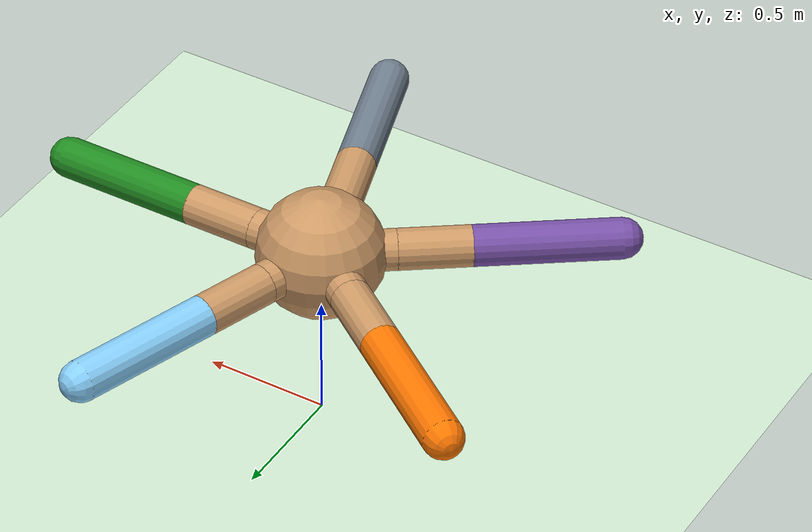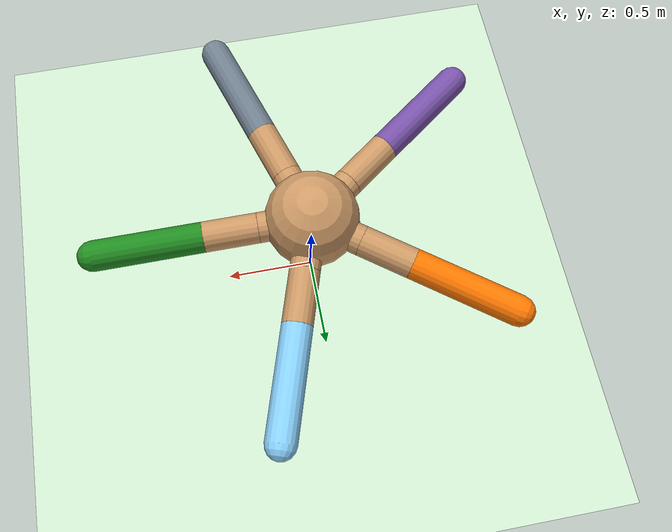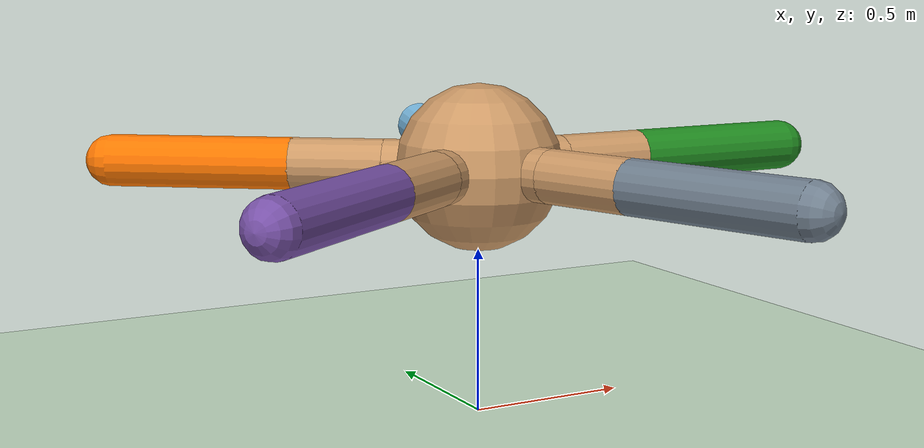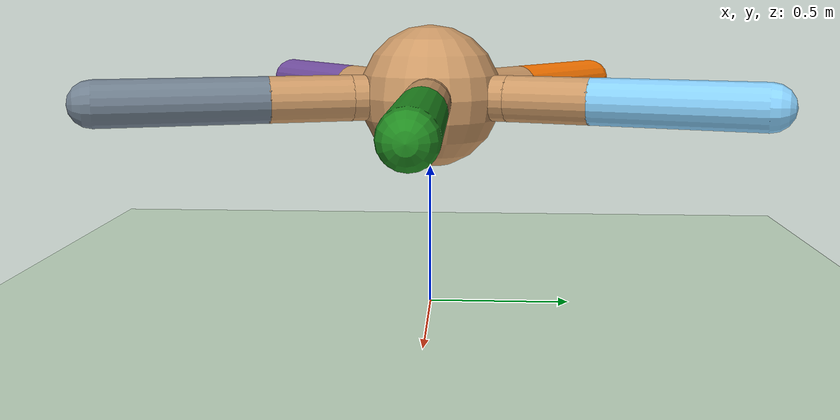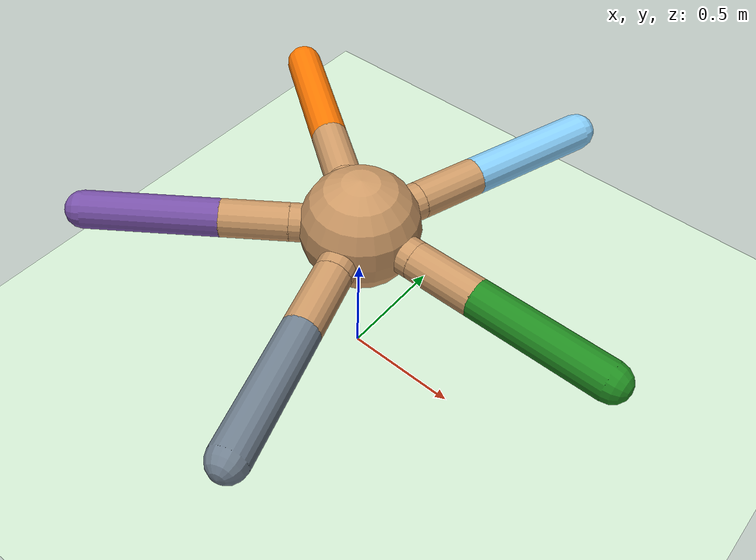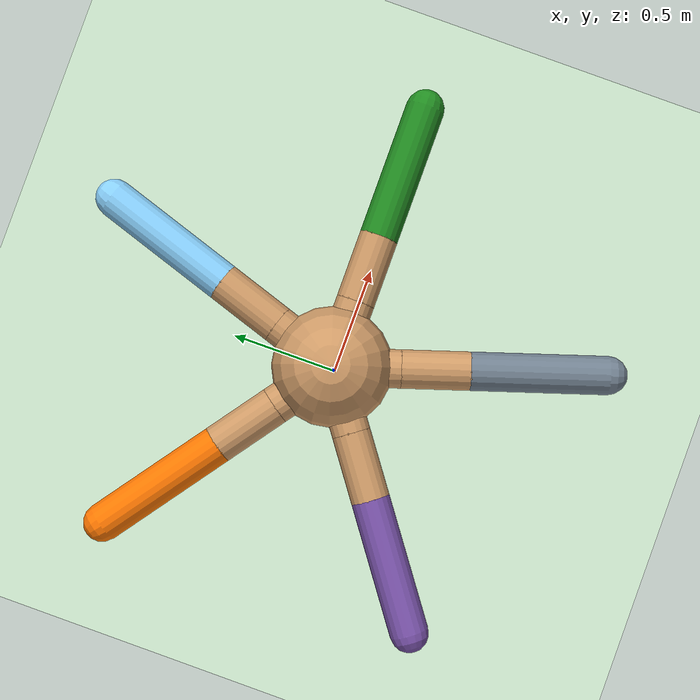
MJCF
<mujoco model="ant_5leg">
  <compiler angle="degree" coordinate="local" inertiafromgeom="true"/>
  <option integrator="RK4" timestep="0.01"/>
  <custom>
    <numeric data="0.0 0.0 0.55 1.0 0.0 0.0 0.0 0.0 1.0 0.0 -1.0 0.0 1.0 0.0 -1.0 0.0 1.0" name="init_qpos"/>
  </custom>
  <default>
    <joint armature="1" damping="1" limited=  "true"/>
    <geom conaffinity="0" condim="3" density="5.0" friction="1 0.5 0.5" margin="0.01" rgba="0.8 0.6 0.4 1"/>
  </default>
  <asset>
    <texture builtin="gradient" height="100" rgb1="1 1 1" rgb2="0 0 0" type="skybox" width="100"/>
    <texture builtin="flat" height="1278" mark="cross" markrgb="1 1 1" name="texgeom" random="0.01" rgb1="0.8 0.6 0.4" rgb2="0.8 0.6 0.4" type="cube" width="127"/>
    <texture builtin="checker" height="100" name="texplane" rgb1="0 0 0" rgb2="0.8 0.8 0.8" type="2d" width="100"/>
    <material name="MatPlane" reflectance="0.5" shininess="1" specular="1" texrepeat="60 60" texture="texplane"/>
    <material name="geom" texture="texgeom" texuniform="true"/>
  </asset>
  <worldbody>
    <light cutoff="100" diffuse="1 1 1" dir="-0 0 -1.3" directional="true" exponent="1" pos="0 0 1.3" specular=".1 .1 .1"/>
    <geom conaffinity="1" condim="3" material="MatPlane" name="floor" pos="0 0 0" rgba="0.8 0.9 0.8 1" size="40 40 40" type="plane"/>
    <body name="torso" pos="0 0 0.75">
      <camera name="track" mode="trackcom" pos="0 -3 0.3" xyaxes="1 0 0 0 0 1"/>
      <geom name="torso_geom" pos="0 0 0" size="0.25" type="sphere"/>
      <joint armature="0" damping="0" limited="false" margin="0.01" name="root" pos="0 0 0" type="free"/>
      <!-- leg_0 :   0 deg -->
      <body name="leg_0" pos="0 0 0">
        <geom fromto="0.0 0.0 0.0 0.2828427125 0 0" name="aux_0_geom" size="0.08" type="capsule"/>
        <body name="aux_0" pos="0.2828427125 0 0" >
          <joint name="hip_0" type="hinge" axis="0 0 1" pos="0 0 0" range="-30 30"/>
          <geom fromto="0 0 0   0.2828427125 0 0" name="leg0_geom" size="0.08" type="capsule" />
          <body pos="0.2828427125 0 0">
            <joint name="ankle_0" type="hinge" axis="0 1 0" pos="0 0 0" range="30 70"/>
            <!-- Forest Green -->
            <geom fromto="0 0 0   0.565685425 0 0" name="leg0_ankle_geom" size="0.08" type="capsule"  rgba="0.13 0.55 0.13 1" />
          </body>
        </body>
      </body>

      <!-- leg_1 :  72 deg -->
      <body name="leg_1" pos="0 0 0">
        <geom fromto="0 0 0   0.0874032049 0.2689994048 0" name="aux_1_geom" size="0.08" type="capsule"/>
        <body name="aux_1" pos="0.0874032049 0.2689994048 0">
          <joint name="hip_1" type="hinge" axis="0 0 1" pos="0 0 0" range="-30 30"/>
          <geom fromto="0 0 0   0.0874032049 0.2689994048 0" name="leg1_geom" size="0.08" type="capsule"/>
          <body pos="0.0874032049 0.2689994048 0">
            <joint name="ankle_1" type="hinge" axis="-0.95105651629 0.30901699437 0" pos="0 0 0" range="30 70"/>
            <!-- Sky Blue -->
            <geom fromto="0 0 0   0.1748064098 0.5379988096 0" name="leg1_ankle_geom" size="0.08" type="capsule" rgba="0.53 0.81 0.98 1" />
          </body>
        </body>
      </body>

      <!-- leg_2 : 144 deg -->
      <body name="leg_2" pos="0 0 0">
        <geom fromto="0 0 0   -0.2288245611 0.1662507751 0" name="aux_2_geom" size="0.08" type="capsule"/>
        <body name="aux_2" pos="-0.2288245611 0.1662507751 0">
          <joint name="hip_2" type="hinge" axis="0 0 1" pos="0 0 0" range="-30 30"/>
          <geom fromto="0 0 0   -0.2288245611 0.1662507751 0" name="leg2_geom" size="0.08" type="capsule"/>
          <body pos="-0.2288245611 0.1662507751 0">
            <joint name="ankle_2" type="hinge" axis="0.58778525229 0.80901699437 0" pos="0 0 0" range="-70 -30"/>
            <!-- Sunset Orange -->
            <geom fromto="0 0 0   -0.4576491223 0.3325015503 0" name="leg2_ankle_geom" size="0.08" type="capsule" rgba="1.0 0.47 0.0 1"/>
          </body>
        </body>
      </body>

      <!-- leg_3 : 216 deg -->
      <body name="leg_3" pos="0 0 0">
        <geom fromto="0 0 0   -0.2288245611 -0.1662507751 0" name="aux_3_geom" size="0.08" type="capsule"/>
        <body name="aux_3" pos="-0.2288245611 -0.1662507751 0">
          <joint name="hip_3" type="hinge" axis="0 0 1" pos="0 0 0" range="-30 30"/>
          <geom fromto="0 0 0   -0.2288245611 -0.1662507751 0" name="leg3_geom" size="0.08" type="capsule"/>
          <body pos="-0.2288245611 -0.1662507751 0">
            <joint name="ankle_3" type="hinge" axis="0.58778525229 -0.80901699437 0" pos="0 0 0" range="30 70"/>
            <!-- Royal Purple -->
            <geom fromto="0 0 0   -0.4576491223 -0.3325015503 0" name="leg3_ankle_geom" size="0.08" type="capsule" rgba="0.47 0.32 0.66 1"/>
          </body>
        </body>
      </body>

      <!-- leg_4 : 288 deg -->
      <body name="leg_4" pos="0 0 0">
        <geom fromto="0 0 0   0.0874032049 -0.2689994048 0" name="aux_4_geom" size="0.08" type="capsule"/>
        <body name="aux_4" pos="0.0874032049 -0.2689994048 0">
          <joint name="hip_4" type="hinge" axis="0 0 1" pos="0 0 0" range="-30 30"/>
          <geom fromto="0 0 0   0.0874032049 -0.2689994048 0" name="leg4_geom" size="0.08" type="capsule"/>
          <body pos="0.0874032049 -0.2689994048 0">
            <joint name="ankle_4" type="hinge" axis="-0.95105651629 -0.30901699437 0" pos="0 0 0" range="-70 -30"/>
            <!-- Slate Gray -->
            <geom fromto="0 0 0   0.1748064098 -0.5379988096 0" name="leg4_ankle_geom" size="0.08" type="capsule" rgba="0.44 0.5 0.56 1"/>
          </body>
        </body>
      </body>

    </body>
  </worldbody>

  <actuator>
    <motor joint="hip_0"   gear="150" ctrllimited="true" ctrlrange="-1 1"/>
    <motor joint="ankle_0" gear="150" ctrllimited="true" ctrlrange="-1 1"/>
    <motor joint="hip_1"   gear="150" ctrllimited="true" ctrlrange="-1 1"/>
    <motor joint="ankle_1" gear="150" ctrllimited="true" ctrlrange="-1 1"/>
    <motor joint="hip_2"   gear="150" ctrllimited="true" ctrlrange="-1 1"/>
    <motor joint="ankle_2" gear="150" ctrllimited="true" ctrlrange="-1 1"/>
    <motor joint="hip_3"   gear="150" ctrllimited="true" ctrlrange="-1 1"/>
    <motor joint="ankle_3" gear="150" ctrllimited="true" ctrlrange="-1 1"/>
    <motor joint="hip_4"   gear="150" ctrllimited="true" ctrlrange="-1 1"/>
    <motor joint="ankle_4" gear="150" ctrllimited="true" ctrlrange="-1 1"/>
  </actuator>
</mujoco>
